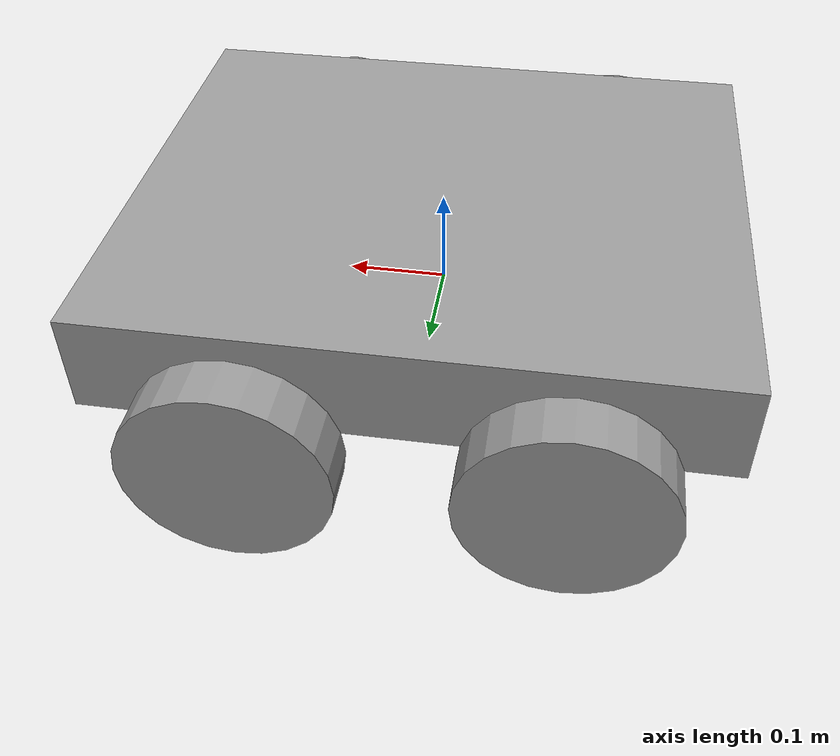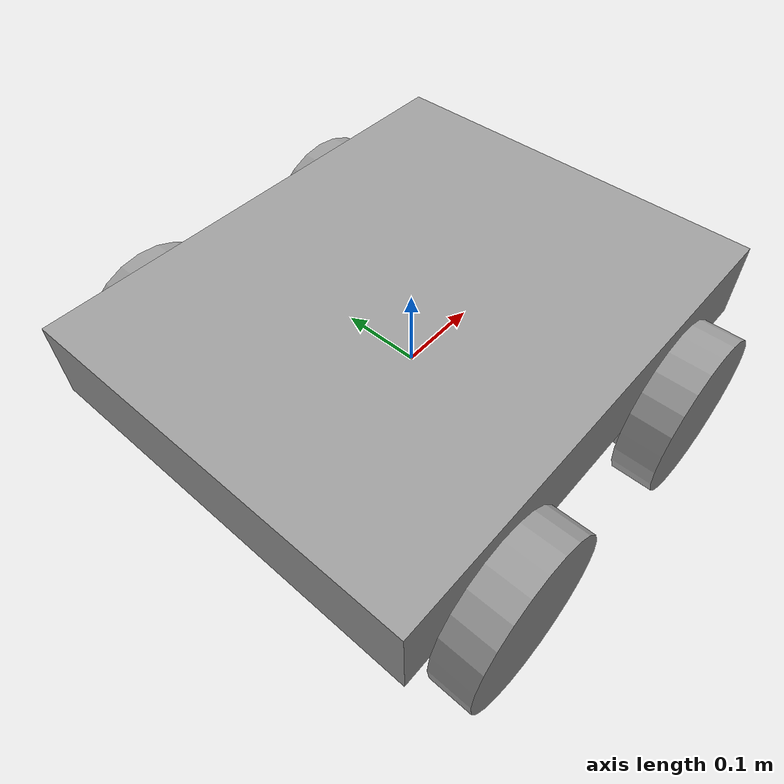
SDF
<?xml version='1.0'?>
<sdf version='1.6'>
  <model name='4WheelMini'>
    <link name='link_2_clone'>
      <pose frame=''>-0.147143 0 -0.010714 0 -0 0</pose>
      <inertial>
        <mass>1</mass>
        <inertia>
          <ixx>0.166667</ixx>
          <ixy>0</ixy>
          <ixz>0</ixz>
          <iyy>0.166667</iyy>
          <iyz>0</iyz>
          <izz>0.166667</izz>
        </inertia>
        <pose frame=''>0 0 0 0 -0 0</pose>
      </inertial>
      <self_collide>0</self_collide>
      <kinematic>0</kinematic>
      <gravity>1</gravity>
      <visual name='visual'>
        <pose frame=''>0 0 0 0 -0 0</pose>
        <geometry>
          <box>
            <size>0.15 0.5 0.05</size>
          </box>
        </geometry>
        <material>
          <lighting>1</lighting>
          <script>
            <uri>file://media/materials/scripts/gazebo.material</uri>
            <name>Gazebo/Grey</name>
          </script>
          <ambient>0.3 0.3 0.3 1</ambient>
          <diffuse>0.7 0.7 0.7 1</diffuse>
          <specular>0.01 0.01 0.01 1</specular>
          <emissive>0 0 0 1</emissive>
          <shader type='vertex'>
            <normal_map>__default__</normal_map>
          </shader>
        </material>
        <transparency>0</transparency>
        <cast_shadows>1</cast_shadows>
      </visual>
      <collision name='collision'>
        <laser_retro>0</laser_retro>
        <max_contacts>10</max_contacts>
        <pose frame=''>0 0 0 0 -0 0</pose>
        <geometry>
          <box>
            <size>0.15 0.5 0.05</size>
          </box>
        </geometry>
        <surface>
          <friction>
            <ode>
              <mu>1</mu>
              <mu2>1</mu2>
              <fdir1>0 0 0</fdir1>
              <slip1>0</slip1>
              <slip2>0</slip2>
            </ode>
            <torsional>
              <coefficient>1</coefficient>
              <patch_radius>0</patch_radius>
              <surface_radius>0</surface_radius>
              <use_patch_radius>1</use_patch_radius>
              <ode>
                <slip>0</slip>
              </ode>
            </torsional>
          </friction>
          <bounce>
            <restitution_coefficient>0</restitution_coefficient>
            <threshold>1e+06</threshold>
          </bounce>
          <contact>
            <collide_without_contact>0</collide_without_contact>
            <collide_without_contact_bitmask>1</collide_without_contact_bitmask>
            <collide_bitmask>1</collide_bitmask>
            <ode>
              <soft_cfm>0</soft_cfm>
              <soft_erp>0.2</soft_erp>
              <kp>1e+13</kp>
              <kd>1</kd>
              <max_vel>0.01</max_vel>
              <min_depth>0</min_depth>
            </ode>
            <bullet>
              <split_impulse>1</split_impulse>
              <split_impulse_penetration_threshold>-0.01</split_impulse_penetration_threshold>
              <soft_cfm>0</soft_cfm>
              <soft_erp>0.2</soft_erp>
              <kp>1e+13</kp>
              <kd>1</kd>
            </bullet>
          </contact>
        </surface>
      </collision>
    </link>
    <link name='link_2_clone_clone'>
      <pose frame=''>0.152857 0 -0.010714 0 -0 0</pose>
      <inertial>
        <mass>1</mass>
        <inertia>
          <ixx>0.166667</ixx>
          <ixy>0</ixy>
          <ixz>0</ixz>
          <iyy>0.166667</iyy>
          <iyz>0</iyz>
          <izz>0.166667</izz>
        </inertia>
        <pose frame=''>0 0 0 0 -0 0</pose>
      </inertial>
      <self_collide>0</self_collide>
      <kinematic>0</kinematic>
      <gravity>1</gravity>
      <visual name='visual'>
        <pose frame=''>0 0 0 0 -0 0</pose>
        <geometry>
          <box>
            <size>0.15 0.5 0.05</size>
          </box>
        </geometry>
        <material>
          <lighting>1</lighting>
          <script>
            <uri>file://media/materials/scripts/gazebo.material</uri>
            <name>Gazebo/Grey</name>
          </script>
          <ambient>0.3 0.3 0.3 1</ambient>
          <diffuse>0.7 0.7 0.7 1</diffuse>
          <specular>0.01 0.01 0.01 1</specular>
          <emissive>0 0 0 1</emissive>
          <shader type='vertex'>
            <normal_map>__default__</normal_map>
          </shader>
        </material>
        <transparency>0</transparency>
        <cast_shadows>1</cast_shadows>
      </visual>
      <collision name='collision'>
        <laser_retro>0</laser_retro>
        <max_contacts>10</max_contacts>
        <pose frame=''>0 0 0 0 -0 0</pose>
        <geometry>
          <box>
            <size>0.15 0.5 0.05</size>
          </box>
        </geometry>
        <surface>
          <friction>
            <ode>
              <mu>1</mu>
              <mu2>1</mu2>
              <fdir1>0 0 0</fdir1>
              <slip1>0</slip1>
              <slip2>0</slip2>
            </ode>
            <torsional>
              <coefficient>1</coefficient>
              <patch_radius>0</patch_radius>
              <surface_radius>0</surface_radius>
              <use_patch_radius>1</use_patch_radius>
              <ode>
                <slip>0</slip>
              </ode>
            </torsional>
          </friction>
          <bounce>
            <restitution_coefficient>0</restitution_coefficient>
            <threshold>1e+06</threshold>
          </bounce>
          <contact>
            <collide_without_contact>0</collide_without_contact>
            <collide_without_contact_bitmask>1</collide_without_contact_bitmask>
            <collide_bitmask>1</collide_bitmask>
            <ode>
              <soft_cfm>0</soft_cfm>
              <soft_erp>0.2</soft_erp>
              <kp>1e+13</kp>
              <kd>1</kd>
              <max_vel>0.01</max_vel>
              <min_depth>0</min_depth>
            </ode>
            <bullet>
              <split_impulse>1</split_impulse>
              <split_impulse_penetration_threshold>-0.01</split_impulse_penetration_threshold>
              <soft_cfm>0</soft_cfm>
              <soft_erp>0.2</soft_erp>
              <kp>1e+13</kp>
              <kd>1</kd>
            </bullet>
          </contact>
        </surface>
      </collision>
    </link>
    <link name='link_3'>
      <pose frame=''>0.002857 0 0.064286 0 -0 0</pose>
      <inertial>
        <mass>1</mass>
        <inertia>
          <ixx>0.166667</ixx>
          <ixy>0</ixy>
          <ixz>0</ixz>
          <iyy>0.166667</iyy>
          <iyz>0</iyz>
          <izz>0.166667</izz>
        </inertia>
        <pose frame=''>0 0 0 0 -0 0</pose>
      </inertial>
      <gravity>1</gravity>
      <self_collide>0</self_collide>
      <kinematic>0</kinematic>
      <visual name='visual'>
        <pose frame=''>0 0 0 0 -0 0</pose>
        <geometry>
          <box>
            <size>0.6 0.5 0.1</size>
          </box>
        </geometry>
        <material>
          <lighting>1</lighting>
          <script>
            <uri>file://media/materials/scripts/gazebo.material</uri>
            <name>Gazebo/Grey</name>
          </script>
          <ambient>0.3 0.3 0.3 1</ambient>
          <diffuse>0.7 0.7 0.7 1</diffuse>
          <specular>0.01 0.01 0.01 1</specular>
          <emissive>0 0 0 1</emissive>
          <shader type='vertex'>
            <normal_map>__default__</normal_map>
          </shader>
        </material>
        <transparency>0</transparency>
        <cast_shadows>1</cast_shadows>
      </visual>
      <collision name='collision'>
        <laser_retro>0</laser_retro>
        <max_contacts>10</max_contacts>
        <pose frame=''>0 0 0 0 -0 0</pose>
        <geometry>
          <box>
            <size>0.6 0.5 0.1</size>
          </box>
        </geometry>
        <surface>
          <friction>
            <ode>
              <mu>1</mu>
              <mu2>1</mu2>
              <fdir1>0 0 0</fdir1>
              <slip1>0</slip1>
              <slip2>0</slip2>
            </ode>
            <torsional>
              <coefficient>1</coefficient>
              <patch_radius>0</patch_radius>
              <surface_radius>0</surface_radius>
              <use_patch_radius>1</use_patch_radius>
              <ode>
                <slip>0</slip>
              </ode>
            </torsional>
          </friction>
          <bounce>
            <restitution_coefficient>0</restitution_coefficient>
            <threshold>1e+06</threshold>
          </bounce>
          <contact>
            <collide_without_contact>0</collide_without_contact>
            <collide_without_contact_bitmask>1</collide_without_contact_bitmask>
            <collide_bitmask>1</collide_bitmask>
            <ode>
              <soft_cfm>0</soft_cfm>
              <soft_erp>0.2</soft_erp>
              <kp>1e+13</kp>
              <kd>1</kd>
              <max_vel>0.01</max_vel>
              <min_depth>0</min_depth>
            </ode>
            <bullet>
              <split_impulse>1</split_impulse>
              <split_impulse_penetration_threshold>-0.01</split_impulse_penetration_threshold>
              <soft_cfm>0</soft_cfm>
              <soft_erp>0.2</soft_erp>
              <kp>1e+13</kp>
              <kd>1</kd>
            </bullet>
          </contact>
        </surface>
      </collision>
    </link>
    <link name='link_4'>
      <pose frame=''>-0.167143 -0.275013 -0.010714 1.5707 -0 0</pose>
      <inertial>
        <mass>1</mass>
        <inertia>
          <ixx>0.145833</ixx>
          <ixy>0</ixy>
          <ixz>0</ixz>
          <iyy>0.145833</iyy>
          <iyz>0</iyz>
          <izz>0.125</izz>
        </inertia>
        <pose frame=''>0 0 0 0 -0 0</pose>
      </inertial>
      <gravity>1</gravity>
      <self_collide>0</self_collide>
      <kinematic>0</kinematic>
      <visual name='visual'>
        <pose frame=''>0 0 0 0 -0 0</pose>
        <geometry>
          <cylinder>
            <radius>0.1</radius>
            <length>0.05</length>
          </cylinder>
        </geometry>
        <material>
          <lighting>1</lighting>
          <script>
            <uri>file://media/materials/scripts/gazebo.material</uri>
            <name>Gazebo/Grey</name>
          </script>
          <ambient>0.3 0.3 0.3 1</ambient>
          <diffuse>0.7 0.7 0.7 1</diffuse>
          <specular>0.01 0.01 0.01 1</specular>
          <emissive>0 0 0 1</emissive>
          <shader type='vertex'>
            <normal_map>__default__</normal_map>
          </shader>
        </material>
        <transparency>0</transparency>
        <cast_shadows>1</cast_shadows>
      </visual>
      <collision name='collision'>
        <laser_retro>0</laser_retro>
        <max_contacts>10</max_contacts>
        <pose frame=''>0 0 0 0 -0 0</pose>
        <geometry>
          <cylinder>
            <radius>0.1</radius>
            <length>0.05</length>
          </cylinder>
        </geometry>
        <surface>
          <friction>
            <ode>
              <mu>1</mu>
              <mu2>1</mu2>
              <fdir1>0 0 0</fdir1>
              <slip1>0</slip1>
              <slip2>0</slip2>
            </ode>
            <torsional>
              <coefficient>1</coefficient>
              <patch_radius>0</patch_radius>
              <surface_radius>0</surface_radius>
              <use_patch_radius>1</use_patch_radius>
              <ode>
                <slip>0</slip>
              </ode>
            </torsional>
          </friction>
          <bounce>
            <restitution_coefficient>0</restitution_coefficient>
            <threshold>1e+06</threshold>
          </bounce>
          <contact>
            <collide_without_contact>0</collide_without_contact>
            <collide_without_contact_bitmask>1</collide_without_contact_bitmask>
            <collide_bitmask>1</collide_bitmask>
            <ode>
              <soft_cfm>0</soft_cfm>
              <soft_erp>0.2</soft_erp>
              <kp>1e+13</kp>
              <kd>1</kd>
              <max_vel>0.01</max_vel>
              <min_depth>0</min_depth>
            </ode>
            <bullet>
              <split_impulse>1</split_impulse>
              <split_impulse_penetration_threshold>-0.01</split_impulse_penetration_threshold>
              <soft_cfm>0</soft_cfm>
              <soft_erp>0.2</soft_erp>
              <kp>1e+13</kp>
              <kd>1</kd>
            </bullet>
          </contact>
        </surface>
      </collision>
    </link>
    <link name='link_4_clone'>
      <pose frame=''>-0.147143 0.27501 -0.010714 1.5707 -0 0</pose>
      <inertial>
        <mass>1</mass>
        <inertia>
          <ixx>0.145833</ixx>
          <ixy>0</ixy>
          <ixz>0</ixz>
          <iyy>0.145833</iyy>
          <iyz>0</iyz>
          <izz>0.125</izz>
        </inertia>
        <pose frame=''>0 0 0 0 -0 0</pose>
      </inertial>
      <self_collide>0</self_collide>
      <kinematic>0</kinematic>
      <visual name='visual'>
        <pose frame=''>0 0 0 0 -0 0</pose>
        <geometry>
          <cylinder>
            <radius>0.1</radius>
            <length>0.05</length>
          </cylinder>
        </geometry>
        <material>
          <lighting>1</lighting>
          <script>
            <uri>file://media/materials/scripts/gazebo.material</uri>
            <name>Gazebo/Grey</name>
          </script>
          <ambient>0.3 0.3 0.3 1</ambient>
          <diffuse>0.7 0.7 0.7 1</diffuse>
          <specular>0.01 0.01 0.01 1</specular>
          <emissive>0 0 0 1</emissive>
          <shader type='vertex'>
            <normal_map>__default__</normal_map>
          </shader>
        </material>
        <transparency>0</transparency>
        <cast_shadows>1</cast_shadows>
      </visual>
      <collision name='collision'>
        <laser_retro>0</laser_retro>
        <max_contacts>10</max_contacts>
        <pose frame=''>0 0 0 0 -0 0</pose>
        <geometry>
          <cylinder>
            <radius>0.1</radius>
            <length>0.05</length>
          </cylinder>
        </geometry>
        <surface>
          <friction>
            <ode>
              <mu>1</mu>
              <mu2>1</mu2>
              <fdir1>0 0 0</fdir1>
              <slip1>0</slip1>
              <slip2>0</slip2>
            </ode>
            <torsional>
              <coefficient>1</coefficient>
              <patch_radius>0</patch_radius>
              <surface_radius>0</surface_radius>
              <use_patch_radius>1</use_patch_radius>
              <ode>
                <slip>0</slip>
              </ode>
            </torsional>
          </friction>
          <bounce>
            <restitution_coefficient>0</restitution_coefficient>
            <threshold>1e+06</threshold>
          </bounce>
          <contact>
            <collide_without_contact>0</collide_without_contact>
            <collide_without_contact_bitmask>1</collide_without_contact_bitmask>
            <collide_bitmask>1</collide_bitmask>
            <ode>
              <soft_cfm>0</soft_cfm>
              <soft_erp>0.2</soft_erp>
              <kp>1e+13</kp>
              <kd>1</kd>
              <max_vel>0.01</max_vel>
              <min_depth>0</min_depth>
            </ode>
            <bullet>
              <split_impulse>1</split_impulse>
              <split_impulse_penetration_threshold>-0.01</split_impulse_penetration_threshold>
              <soft_cfm>0</soft_cfm>
              <soft_erp>0.2</soft_erp>
              <kp>1e+13</kp>
              <kd>1</kd>
            </bullet>
          </contact>
        </surface>
      </collision>
    </link>
    <link name='link_4_clone_0'>
      <pose frame=''>0.152857 -0.275009 -0.010714 1.5707 -0 0</pose>
      <inertial>
        <mass>1</mass>
        <inertia>
          <ixx>0.145833</ixx>
          <ixy>0</ixy>
          <ixz>0</ixz>
          <iyy>0.145833</iyy>
          <iyz>0</iyz>
          <izz>0.125</izz>
        </inertia>
        <pose frame=''>0 0 0 0 -0 0</pose>
      </inertial>
      <self_collide>0</self_collide>
      <kinematic>0</kinematic>
      <visual name='visual'>
        <pose frame=''>0 0 0 0 -0 0</pose>
        <geometry>
          <cylinder>
            <radius>0.1</radius>
            <length>0.05</length>
          </cylinder>
        </geometry>
        <material>
          <lighting>1</lighting>
          <script>
            <uri>file://media/materials/scripts/gazebo.material</uri>
            <name>Gazebo/Grey</name>
          </script>
          <ambient>0.3 0.3 0.3 1</ambient>
          <diffuse>0.7 0.7 0.7 1</diffuse>
          <specular>0.01 0.01 0.01 1</specular>
          <emissive>0 0 0 1</emissive>
          <shader type='vertex'>
            <normal_map>__default__</normal_map>
          </shader>
        </material>
        <transparency>0</transparency>
        <cast_shadows>1</cast_shadows>
      </visual>
      <collision name='collision'>
        <laser_retro>0</laser_retro>
        <max_contacts>10</max_contacts>
        <pose frame=''>0 0 0 0 -0 0</pose>
        <geometry>
          <cylinder>
            <radius>0.1</radius>
            <length>0.05</length>
          </cylinder>
        </geometry>
        <surface>
          <friction>
            <ode>
              <mu>1</mu>
              <mu2>1</mu2>
              <fdir1>0 0 0</fdir1>
              <slip1>0</slip1>
              <slip2>0</slip2>
            </ode>
            <torsional>
              <coefficient>1</coefficient>
              <patch_radius>0</patch_radius>
              <surface_radius>0</surface_radius>
              <use_patch_radius>1</use_patch_radius>
              <ode>
                <slip>0</slip>
              </ode>
            </torsional>
          </friction>
          <bounce>
            <restitution_coefficient>0</restitution_coefficient>
            <threshold>1e+06</threshold>
          </bounce>
          <contact>
            <collide_without_contact>0</collide_without_contact>
            <collide_without_contact_bitmask>1</collide_without_contact_bitmask>
            <collide_bitmask>1</collide_bitmask>
            <ode>
              <soft_cfm>0</soft_cfm>
              <soft_erp>0.2</soft_erp>
              <kp>1e+13</kp>
              <kd>1</kd>
              <max_vel>0.01</max_vel>
              <min_depth>0</min_depth>
            </ode>
            <bullet>
              <split_impulse>1</split_impulse>
              <split_impulse_penetration_threshold>-0.01</split_impulse_penetration_threshold>
              <soft_cfm>0</soft_cfm>
              <soft_erp>0.2</soft_erp>
              <kp>1e+13</kp>
              <kd>1</kd>
            </bullet>
          </contact>
        </surface>
      </collision>
    </link>
    <link name='link_4_clone_1'>
      <pose frame=''>0.152857 0.27501 -0.010714 1.5707 -0 0</pose>
      <inertial>
        <mass>1</mass>
        <inertia>
          <ixx>0.145833</ixx>
          <ixy>0</ixy>
          <ixz>0</ixz>
          <iyy>0.145833</iyy>
          <iyz>0</iyz>
          <izz>0.125</izz>
        </inertia>
        <pose frame=''>0 0 0 0 -0 0</pose>
      </inertial>
      <self_collide>0</self_collide>
      <kinematic>0</kinematic>
      <visual name='visual'>
        <pose frame=''>0 0 0 0 -0 0</pose>
        <geometry>
          <cylinder>
            <radius>0.1</radius>
            <length>0.05</length>
          </cylinder>
        </geometry>
        <material>
          <lighting>1</lighting>
          <script>
            <uri>file://media/materials/scripts/gazebo.material</uri>
            <name>Gazebo/Grey</name>
          </script>
          <ambient>0.3 0.3 0.3 1</ambient>
          <diffuse>0.7 0.7 0.7 1</diffuse>
          <specular>0.01 0.01 0.01 1</specular>
          <emissive>0 0 0 1</emissive>
          <shader type='vertex'>
            <normal_map>__default__</normal_map>
          </shader>
        </material>
        <transparency>0</transparency>
        <cast_shadows>1</cast_shadows>
      </visual>
      <collision name='collision'>
        <laser_retro>0</laser_retro>
        <max_contacts>10</max_contacts>
        <pose frame=''>0 0 0 0 -0 0</pose>
        <geometry>
          <cylinder>
            <radius>0.1</radius>
            <length>0.05</length>
          </cylinder>
        </geometry>
        <surface>
          <friction>
            <ode>
              <mu>1</mu>
              <mu2>1</mu2>
              <fdir1>0 0 0</fdir1>
              <slip1>0</slip1>
              <slip2>0</slip2>
            </ode>
            <torsional>
              <coefficient>1</coefficient>
              <patch_radius>0</patch_radius>
              <surface_radius>0</surface_radius>
              <use_patch_radius>1</use_patch_radius>
              <ode>
                <slip>0</slip>
              </ode>
            </torsional>
          </friction>
          <bounce>
            <restitution_coefficient>0</restitution_coefficient>
            <threshold>1e+06</threshold>
          </bounce>
          <contact>
            <collide_without_contact>0</collide_without_contact>
            <collide_without_contact_bitmask>1</collide_without_contact_bitmask>
            <collide_bitmask>1</collide_bitmask>
            <ode>
              <soft_cfm>0</soft_cfm>
              <soft_erp>0.2</soft_erp>
              <kp>1e+13</kp>
              <kd>1</kd>
              <max_vel>0.01</max_vel>
              <min_depth>0</min_depth>
            </ode>
            <bullet>
              <split_impulse>1</split_impulse>
              <split_impulse_penetration_threshold>-0.01</split_impulse_penetration_threshold>
              <soft_cfm>0</soft_cfm>
              <soft_erp>0.2</soft_erp>
              <kp>1e+13</kp>
              <kd>1</kd>
            </bullet>
          </contact>
        </surface>
      </collision>
    </link>
    <joint name='link_2_clone_JOINT_6' type='revolute'>
      <parent>link_2_clone</parent>
      <child>link_4</child>
      <pose frame=''>0 0 0 0 -0 0</pose>
      <axis>
        <xyz>0 0 1</xyz>
        <use_parent_model_frame>0</use_parent_model_frame>
        <limit>
          <lower>-1.79769e+308</lower>
          <upper>1.79769e+308</upper>
          <effort>-1</effort>
          <velocity>-1</velocity>
        </limit>
        <dynamics>
          <spring_reference>0</spring_reference>
          <spring_stiffness>0</spring_stiffness>
          <damping>0</damping>
        </dynamics>
      </axis>
      <physics>
        <ode>
          <limit>
            <cfm>0</cfm>
            <erp>0.2</erp>
          </limit>
          <suspension>
            <cfm>0</cfm>
            <erp>0.2</erp>
          </suspension>
        </ode>
      </physics>
    </joint>
    <joint name='link_2_clone_JOINT_7' type='revolute'>
      <parent>link_2_clone</parent>
      <child>link_4_clone</child>
      <pose frame=''>0 0 0 0 -0 0</pose>
      <axis>
        <xyz>0 0 1</xyz>
        <use_parent_model_frame>0</use_parent_model_frame>
        <limit>
          <lower>-1.79769e+308</lower>
          <upper>1.79769e+308</upper>
          <effort>-1</effort>
          <velocity>-1</velocity>
        </limit>
        <dynamics>
          <spring_reference>0</spring_reference>
          <spring_stiffness>0</spring_stiffness>
          <damping>0</damping>
        </dynamics>
      </axis>
      <physics>
        <ode>
          <limit>
            <cfm>0</cfm>
            <erp>0.2</erp>
          </limit>
          <suspension>
            <cfm>0</cfm>
            <erp>0.2</erp>
          </suspension>
        </ode>
      </physics>
    </joint>
    <joint name='link_2_clone_clone_JOINT_8' type='revolute'>
      <parent>link_2_clone_clone</parent>
      <child>link_4_clone_0</child>
      <pose frame=''>0 0 0 0 -0 0</pose>
      <axis>
        <xyz>0 0 1</xyz>
        <use_parent_model_frame>0</use_parent_model_frame>
        <limit>
          <lower>-1.79769e+308</lower>
          <upper>1.79769e+308</upper>
          <effort>-1</effort>
          <velocity>-1</velocity>
        </limit>
        <dynamics>
          <spring_reference>0</spring_reference>
          <spring_stiffness>0</spring_stiffness>
          <damping>0</damping>
        </dynamics>
      </axis>
      <physics>
        <ode>
          <limit>
            <cfm>0</cfm>
            <erp>0.2</erp>
          </limit>
          <suspension>
            <cfm>0</cfm>
            <erp>0.2</erp>
          </suspension>
        </ode>
      </physics>
    </joint>
    <joint name='link_2_clone_clone_JOINT_9' type='revolute'>
      <parent>link_2_clone_clone</parent>
      <child>link_4_clone_1</child>
      <pose frame=''>0 0 0 0 -0 0</pose>
      <axis>
        <xyz>0 0 1</xyz>
        <use_parent_model_frame>0</use_parent_model_frame>
        <limit>
          <lower>-1.79769e+308</lower>
          <upper>1.79769e+308</upper>
          <effort>-1</effort>
          <velocity>-1</velocity>
        </limit>
        <dynamics>
          <spring_reference>0</spring_reference>
          <spring_stiffness>0</spring_stiffness>
          <damping>0</damping>
        </dynamics>
      </axis>
      <physics>
        <ode>
          <limit>
            <cfm>0</cfm>
            <erp>0.2</erp>
          </limit>
          <suspension>
            <cfm>0</cfm>
            <erp>0.2</erp>
          </suspension>
        </ode>
      </physics>
    </joint>
    <joint name='link_3_JOINT_10' type='fixed'>
      <parent>link_3</parent>
      <child>link_2_clone</child>
      <pose frame=''>0 0 0 0 -0 0</pose>
      <physics>
        <ode>
          <limit>
            <cfm>0</cfm>
            <erp>0.2</erp>
          </limit>
          <suspension>
            <cfm>0</cfm>
            <erp>0.2</erp>
          </suspension>
        </ode>
      </physics>
    </joint>
    <joint name='link_3_JOINT_11' type='fixed'>
      <parent>link_3</parent>
      <child>link_2_clone_clone</child>
      <pose frame=''>0 0 0 0 -0 0</pose>
      <physics>
        <ode>
          <limit>
            <cfm>0</cfm>
            <erp>0.2</erp>
          </limit>
          <suspension>
            <cfm>0</cfm>
            <erp>0.2</erp>
          </suspension>
        </ode>
      </physics>
    </joint>
    <static>0</static>
    <allow_auto_disable>1</allow_auto_disable>
  </model>
</sdf>
